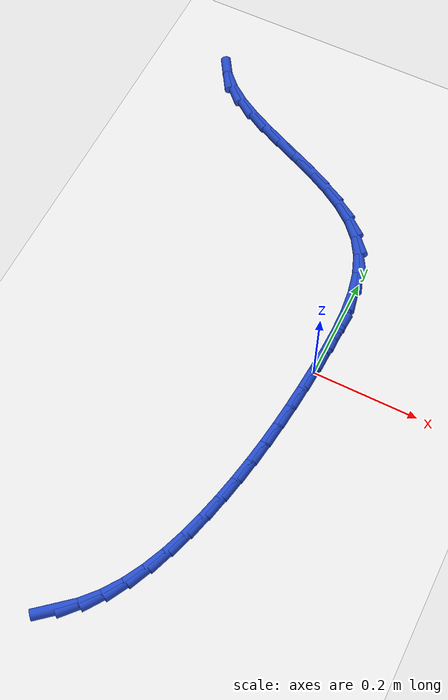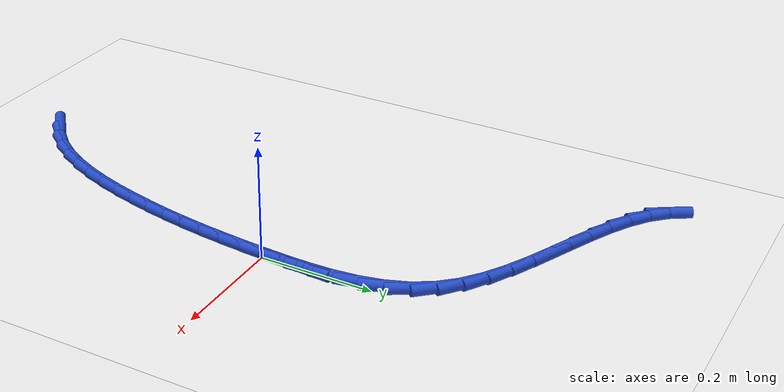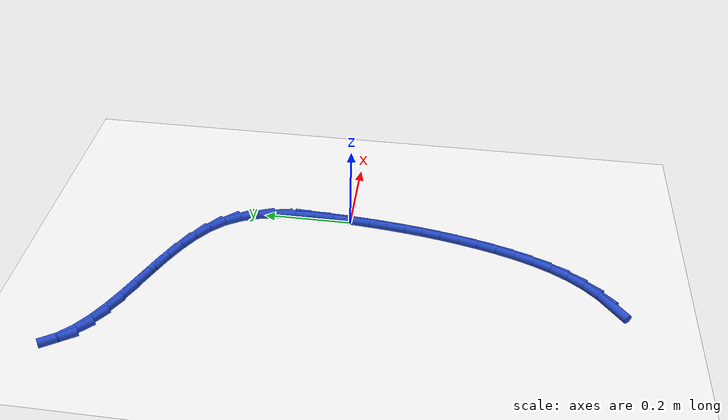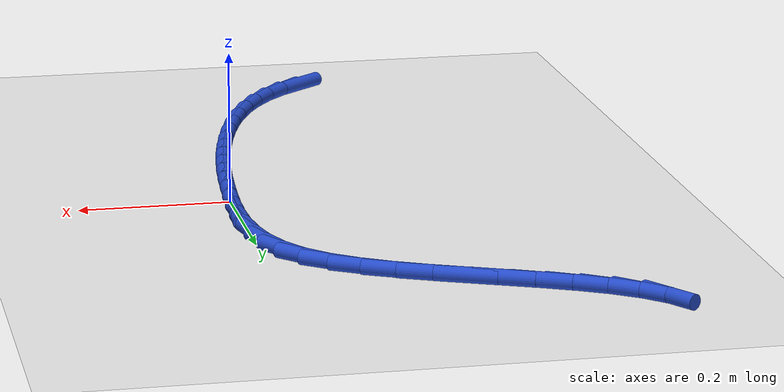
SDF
<sdf version="1.6">
 <world name="default">
  <model name="ground_plane">
   <static>1</static>
   <link name="link">
    <collision name="collision">
     <geometry><plane><normal>0 0 1</normal><size>100 100</size></plane></geometry>
     <surface><friction><ode><mu>100</mu><mu2>50</mu2></ode></friction></surface>
    </collision>
    <visual name="visual">
     <cast_shadows>0</cast_shadows>
     <geometry><plane><normal>0 0 1</normal><size>100 100</size></plane></geometry>
     <material>
      <script><uri>file://media/materials/scripts/gazebo.material</uri><name>Gazebo/WhiteGlow</name></script>
     </material>
    </visual>
   </link>
  </model>
  <model name="line">
   <link name="link_0">
    <pose>-1.734723475976807e-18 -6.938893903907228e-17 0.01 0 1.57 1.5075813447620587</pose>
    <collision name="collision">
     <geometry><cylinder><radius>0.01</radius><length>0.08</length></cylinder></geometry>
    </collision>
    <visual name="visual">
     <material>
      <script><name>Gazebo/Blue</name><uri>file://media/materials/scripts/gazebo.material</uri></script>
     </material>
     <geometry><cylinder><radius>0.01</radius><length>0.08</length></cylinder></geometry>
    </visual>
   </link>
   <link name="link_1">
    <pose>0.002784637520736706 0.04399158524193885 0.01 0 1.57 1.5406812396212106</pose>
    <collision name="collision">
     <geometry><cylinder><radius>0.01</radius><length>0.08</length></cylinder></geometry>
    </collision>
    <visual name="visual">
     <material>
      <script><name>Gazebo/Blue</name><uri>file://media/materials/scripts/gazebo.material</uri></script>
     </material>
     <geometry><cylinder><radius>0.01</radius><length>0.08</length></cylinder></geometry>
    </visual>
   </link>
   <link name="link_2">
    <pose>0.004123461948492164 0.08843507832212538 0.01 0 1.57 -1.5465252184194505</pose>
    <collision name="collision">
     <geometry><cylinder><radius>0.01</radius><length>0.08</length></cylinder></geometry>
    </collision>
    <visual name="visual">
     <material>
      <script><name>Gazebo/Blue</name><uri>file://media/materials/scripts/gazebo.material</uri></script>
     </material>
     <geometry><cylinder><radius>0.01</radius><length>0.08</length></cylinder></geometry>
    </visual>
   </link>
   <link name="link_3">
    <pose>0.003054482190493274 0.13246973162138626 0.01 0 1.57 -1.46737225537892</pose>
    <collision name="collision">
     <geometry><cylinder><radius>0.01</radius><length>0.08</length></cylinder></geometry>
    </collision>
    <visual name="visual">
     <material>
      <script><name>Gazebo/Blue</name><uri>file://media/materials/scripts/gazebo.material</uri></script>
     </material>
     <geometry><cylinder><radius>0.01</radius><length>0.08</length></cylinder></geometry>
    </visual>
   </link>
   <link name="link_4">
    <pose>-0.0013842928460330636 0.17523479752054835 0.01 0 1.57 -1.3582183337706233</pose>
    <collision name="collision">
     <geometry><cylinder><radius>0.01</radius><length>0.08</length></cylinder></geometry>
    </collision>
    <visual name="visual">
     <material>
      <script><name>Gazebo/Blue</name><uri>file://media/materials/scripts/gazebo.material</uri></script>
     </material>
     <geometry><cylinder><radius>0.01</radius><length>0.08</length></cylinder></geometry>
    </visual>
   </link>
   <link name="link_5">
    <pose>-0.010154854253859954 0.21586952840043838 0.01 0 1.57 -1.21323795592164</pose>
    <collision name="collision">
     <geometry><cylinder><radius>0.01</radius><length>0.08</length></cylinder></geometry>
    </collision>
    <visual name="visual">
     <material>
      <script><name>Gazebo/Blue</name><uri>file://media/materials/scripts/gazebo.material</uri></script>
     </material>
     <geometry><cylinder><radius>0.01</radius><length>0.08</length></cylinder></geometry>
    </visual>
   </link>
   <link name="link_6">
    <pose>-0.02421919312576048 0.25351317664188305 0.01 0 1.57 -1.0294588875116106</pose>
    <collision name="collision">
     <geometry><cylinder><radius>0.01</radius><length>0.08</length></cylinder></geometry>
    </collision>
    <visual name="visual">
     <material>
      <script><name>Gazebo/Blue</name><uri>file://media/materials/scripts/gazebo.material</uri></script>
     </material>
     <geometry><cylinder><radius>0.01</radius><length>0.08</length></cylinder></geometry>
    </visual>
   </link>
   <link name="link_7">
    <pose>-0.044537344429835014 0.28730641109138877 0.01 0 1.57 -0.8309019516130127</pose>
    <collision name="collision">
     <geometry><cylinder><radius>0.01</radius><length>0.08</length></cylinder></geometry>
    </collision>
    <visual name="visual">
     <material>
      <script><name>Gazebo/Blue</name><uri>file://media/materials/scripts/gazebo.material</uri></script>
     </material>
     <geometry><cylinder><radius>0.01</radius><length>0.08</length></cylinder></geometry>
    </visual>
   </link>
   <link name="link_8">
    <pose>-0.07147826844885385 0.3168179085938486 0.01 0 1.57 -0.6712388561655755</pose>
    <collision name="collision">
     <geometry><cylinder><radius>0.01</radius><length>0.08</length></cylinder></geometry>
    </collision>
    <visual name="visual">
     <material>
      <script><name>Gazebo/Blue</name><uri>file://media/materials/scripts/gazebo.material</uri></script>
     </material>
     <geometry><cylinder><radius>0.01</radius><length>0.08</length></cylinder></geometry>
    </visual>
   </link>
   <link name="link_9">
    <pose>-0.1039927515524356 0.3426432716822239 0.01 0 1.57 -0.5559903240304429</pose>
    <collision name="collision">
     <geometry><cylinder><radius>0.01</radius><length>0.08</length></cylinder></geometry>
    </collision>
    <visual name="visual">
     <material>
      <script><name>Gazebo/Blue</name><uri>file://media/materials/scripts/gazebo.material</uri></script>
     </material>
     <geometry><cylinder><radius>0.01</radius><length>0.08</length></cylinder></geometry>
    </visual>
   </link>
   <link name="link_10">
    <pose>-0.14082327517312274 0.365528940307124 0.01 0 1.57 -0.4785342879646732</pose>
    <collision name="collision">
     <geometry><cylinder><radius>0.01</radius><length>0.08</length></cylinder></geometry>
    </collision>
    <visual name="visual">
     <material>
      <script><name>Gazebo/Blue</name><uri>file://media/materials/scripts/gazebo.material</uri></script>
     </material>
     <geometry><cylinder><radius>0.01</radius><length>0.08</length></cylinder></geometry>
    </visual>
   </link>
   <link name="link_11">
    <pose>-0.18071232074345772 0.3862213544191577 0.01 0 1.57 -0.43248763090904774</pose>
    <collision name="collision">
     <geometry><cylinder><radius>0.01</radius><length>0.08</length></cylinder></geometry>
    </collision>
    <visual name="visual">
     <material>
      <script><name>Gazebo/Blue</name><uri>file://media/materials/scripts/gazebo.material</uri></script>
     </material>
     <geometry><cylinder><radius>0.01</radius><length>0.08</length></cylinder></geometry>
    </visual>
   </link>
   <link name="link_12">
    <pose>-0.22240236969598312 0.40546695396893434 0.01 0 1.57 -0.4137621364217773</pose>
    <collision name="collision">
     <geometry><cylinder><radius>0.01</radius><length>0.08</length></cylinder></geometry>
    </collision>
    <visual name="visual">
     <material>
      <script><name>Gazebo/Blue</name><uri>file://media/materials/scripts/gazebo.material</uri></script>
     </material>
     <geometry><cylinder><radius>0.01</radius><length>0.08</length></cylinder></geometry>
    </visual>
   </link>
   <link name="link_13">
    <pose>-0.2646359034632414 0.424012178907063 0.01 0 1.57 -0.4209999911419791</pose>
    <collision name="collision">
     <geometry><cylinder><radius>0.01</radius><length>0.08</length></cylinder></geometry>
    </collision>
    <visual name="visual">
     <material>
      <script><name>Gazebo/Blue</name><uri>file://media/materials/scripts/gazebo.material</uri></script>
     </material>
     <geometry><cylinder><radius>0.01</radius><length>0.08</length></cylinder></geometry>
    </visual>
   </link>
   <link name="link_14">
    <pose>-0.306155403477775 0.4426034691841526 0.01 0 1.57 -0.4557237394077343</pose>
    <collision name="collision">
     <geometry><cylinder><radius>0.01</radius><length>0.08</length></cylinder></geometry>
    </collision>
    <visual name="visual">
     <material>
      <script><name>Gazebo/Blue</name><uri>file://media/materials/scripts/gazebo.material</uri></script>
     </material>
     <geometry><cylinder><radius>0.01</radius><length>0.08</length></cylinder></geometry>
    </visual>
   </link>
   <link name="link_15">
    <pose>-0.34570335117212647 0.46198726475081253 0.01 0 1.57 -0.5226489040140722</pose>
    <collision name="collision">
     <geometry><cylinder><radius>0.01</radius><length>0.08</length></cylinder></geometry>
    </collision>
    <visual name="visual">
     <material>
      <script><name>Gazebo/Blue</name><uri>file://media/materials/scripts/gazebo.material</uri></script>
     </material>
     <geometry><cylinder><radius>0.01</radius><length>0.08</length></cylinder></geometry>
    </visual>
   </link>
   <link name="link_16">
    <pose>-0.38202222797883817 0.4829100055576516 0.01 0 1.57 -0.6299740824482429</pose>
    <collision name="collision">
     <geometry><cylinder><radius>0.01</radius><length>0.08</length></cylinder></geometry>
    </collision>
    <visual name="visual">
     <material>
      <script><name>Gazebo/Blue</name><uri>file://media/materials/scripts/gazebo.material</uri></script>
     </material>
     <geometry><cylinder><radius>0.01</radius><length>0.08</length></cylinder></geometry>
    </visual>
   </link>
   <link name="link_17">
    <pose>-0.4138545153304529 0.5061181315552792 0.01 0 1.57 -0.788298541894239</pose>
    <collision name="collision">
     <geometry><cylinder><radius>0.01</radius><length>0.08</length></cylinder></geometry>
    </collision>
    <visual name="visual">
     <material>
      <script><name>Gazebo/Blue</name><uri>file://media/materials/scripts/gazebo.material</uri></script>
     </material>
     <geometry><cylinder><radius>0.01</radius><length>0.08</length></cylinder></geometry>
    </visual>
   </link>
   <link name="link_18">
    <pose>-0.43994269465951275 0.5323580826943042 0.01 0 1.57 -1.0038657184812607</pose>
    <collision name="collision">
     <geometry><cylinder><radius>0.01</radius><length>0.08</length></cylinder></geometry>
    </collision>
    <visual name="visual">
     <material>
      <script><name>Gazebo/Blue</name><uri>file://media/materials/scripts/gazebo.material</uri></script>
     </material>
     <geometry><cylinder><radius>0.01</radius><length>0.08</length></cylinder></geometry>
    </visual>
   </link>
   <link name="link_205">
    <pose>-0.19896197428527543 -0.5757216868065077 0.01 0 1.57 0.6942159627749045</pose>
    <collision name="collision">
     <geometry><cylinder><radius>0.01</radius><length>0.08</length></cylinder></geometry>
    </collision>
    <visual name="visual">
     <material>
      <script><name>Gazebo/Blue</name><uri>file://media/materials/scripts/gazebo.material</uri></script>
     </material>
     <geometry><cylinder><radius>0.01</radius><length>0.08</length></cylinder></geometry>
    </visual>
   </link>
   <link name="link_206">
    <pose>-0.16854131709432416 -0.5503980506632516 0.01 0 1.57 0.8292312889650921</pose>
    <collision name="collision">
     <geometry><cylinder><radius>0.01</radius><length>0.08</length></cylinder></geometry>
    </collision>
    <visual name="visual">
     <material>
      <script><name>Gazebo/Blue</name><uri>file://media/materials/scripts/gazebo.material</uri></script>
     </material>
     <geometry><cylinder><radius>0.01</radius><length>0.08</length></cylinder></geometry>
    </visual>
   </link>
   <link name="link_207">
    <pose>-0.14162526264012698 -0.5210125409163601 0.01 0 1.57 0.9577525054974335</pose>
    <collision name="collision">
     <geometry><cylinder><radius>0.01</radius><length>0.08</length></cylinder></geometry>
    </collision>
    <visual name="visual">
     <material>
      <script><name>Gazebo/Blue</name><uri>file://media/materials/scripts/gazebo.material</uri></script>
     </material>
     <geometry><cylinder><radius>0.01</radius><length>0.08</length></cylinder></geometry>
    </visual>
   </link>
   <link name="link_208">
    <pose>-0.11822100438300491 -0.4877422995064346 0.01 0 1.57 1.0639790946997325</pose>
    <collision name="collision">
     <geometry><cylinder><radius>0.01</radius><length>0.08</length></cylinder></geometry>
    </collision>
    <visual name="visual">
     <material>
      <script><name>Gazebo/Blue</name><uri>file://media/materials/scripts/gazebo.material</uri></script>
     </material>
     <geometry><cylinder><radius>0.01</radius><length>0.08</length></cylinder></geometry>
    </visual>
   </link>
   <link name="link_209">
    <pose>-0.09799942387312803 -0.4513193262255612 0.01 0 1.57 1.1501027824840577</pose>
    <collision name="collision">
     <geometry><cylinder><radius>0.01</radius><length>0.08</length></cylinder></geometry>
    </collision>
    <visual name="visual">
     <material>
      <script><name>Gazebo/Blue</name><uri>file://media/materials/scripts/gazebo.material</uri></script>
     </material>
     <geometry><cylinder><radius>0.01</radius><length>0.08</length></cylinder></geometry>
    </visual>
   </link>
   <link name="link_210">
    <pose>-0.08062516981320962 -0.4124859040114564 0.01 0 1.57 1.2190969890287138</pose>
    <collision name="collision">
     <geometry><cylinder><radius>0.01</radius><length>0.08</length></cylinder></geometry>
    </collision>
    <visual name="visual">
     <material>
      <script><name>Gazebo/Blue</name><uri>file://media/materials/scripts/gazebo.material</uri></script>
     </material>
     <geometry><cylinder><radius>0.01</radius><length>0.08</length></cylinder></geometry>
    </visual>
   </link>
   <link name="link_211">
    <pose>-0.06576289090596288 -0.37198431580183605 0.01 0 1.57 1.2736487769379152</pose>
    <collision name="collision">
     <geometry><cylinder><radius>0.01</radius><length>0.08</length></cylinder></geometry>
    </collision>
    <visual name="visual">
     <material>
      <script><name>Gazebo/Blue</name><uri>file://media/materials/scripts/gazebo.material</uri></script>
     </material>
     <geometry><cylinder><radius>0.01</radius><length>0.08</length></cylinder></geometry>
    </visual>
   </link>
   <link name="link_212">
    <pose>-0.05307723585410082 -0.33055684453441564 0.01 0 1.57 1.3158542511454885</pose>
    <collision name="collision">
     <geometry><cylinder><radius>0.01</radius><length>0.08</length></cylinder></geometry>
    </collision>
    <visual name="visual">
     <material>
      <script><name>Gazebo/Blue</name><uri>file://media/materials/scripts/gazebo.material</uri></script>
     </material>
     <geometry><cylinder><radius>0.01</radius><length>0.08</length></cylinder></geometry>
    </visual>
   </link>
   <link name="link_213">
    <pose>-0.04223285336033725 -0.2889457731469134 0.01 0 1.57 1.3480578030308419</pose>
    <collision name="collision">
     <geometry><cylinder><radius>0.01</radius><length>0.08</length></cylinder></geometry>
    </collision>
    <visual name="visual">
     <material>
      <script><name>Gazebo/Blue</name><uri>file://media/materials/scripts/gazebo.material</uri></script>
     </material>
     <geometry><cylinder><radius>0.01</radius><length>0.08</length></cylinder></geometry>
    </visual>
   </link>
   <link name="link_214">
    <pose>-0.03291261530086931 -0.2477962117374202 0.01 0 1.57 1.3769879419287105</pose>
    <collision name="collision">
     <geometry><cylinder><radius>0.01</radius><length>0.08</length></cylinder></geometry>
    </collision>
    <visual name="visual">
     <material>
      <script><name>Gazebo/Blue</name><uri>file://media/materials/scripts/gazebo.material</uri></script>
     </material>
     <geometry><cylinder><radius>0.01</radius><length>0.08</length></cylinder></geometry>
    </visual>
   </link>
   <link name="link_215">
    <pose>-0.024923459882788542 -0.20709170189702872 0.01 0 1.57 1.4046684621458836</pose>
    <collision name="collision">
     <geometry><cylinder><radius>0.01</radius><length>0.08</length></cylinder></geometry>
    </collision>
    <visual name="visual">
     <material>
      <script><name>Gazebo/Blue</name><uri>file://media/materials/scripts/gazebo.material</uri></script>
     </material>
     <geometry><cylinder><radius>0.01</radius><length>0.08</length></cylinder></geometry>
    </visual>
   </link>
   <link name="link_216">
    <pose>-0.01812403439259697 -0.1665400528870556 0.01 0 1.57 1.4303987900744264</pose>
    <collision name="collision">
     <geometry><cylinder><radius>0.01</radius><length>0.08</length></cylinder></geometry>
    </collision>
    <visual name="visual">
     <material>
      <script><name>Gazebo/Blue</name><uri>file://media/materials/scripts/gazebo.material</uri></script>
     </material>
     <geometry><cylinder><radius>0.01</radius><length>0.08</length></cylinder></geometry>
    </visual>
   </link>
   <link name="link_217">
    <pose>-0.012373157244758676 -0.1258481614499349 0.01 0 1.57 1.4535617351863557</pose>
    <collision name="collision">
     <geometry><cylinder><radius>0.01</radius><length>0.08</length></cylinder></geometry>
    </collision>
    <visual name="visual">
     <material>
      <script><name>Gazebo/Blue</name><uri>file://media/materials/scripts/gazebo.material</uri></script>
     </material>
     <geometry><cylinder><radius>0.01</radius><length>0.08</length></cylinder></geometry>
    </visual>
   </link>
   <link name="link_218">
    <pose>-0.007529646853737255 -0.08472292432809761 0.01 0 1.57 1.4736796060665145</pose>
    <collision name="collision">
     <geometry><cylinder><radius>0.01</radius><length>0.08</length></cylinder></geometry>
    </collision>
    <visual name="visual">
     <material>
      <script><name>Gazebo/Blue</name><uri>file://media/materials/scripts/gazebo.material</uri></script>
     </material>
     <geometry><cylinder><radius>0.01</radius><length>0.08</length></cylinder></geometry>
    </visual>
   </link>
   <link name="link_219">
    <pose>-0.0034523216339964647 -0.04287123826397564 0.01 0 1.57 1.490442032358963</pose>
    <collision name="collision">
     <geometry><cylinder><radius>0.01</radius><length>0.08</length></cylinder></geometry>
    </collision>
    <visual name="visual">
     <material>
      <script><name>Gazebo/Blue</name><uri>file://media/materials/scripts/gazebo.material</uri></script>
     </material>
     <geometry><cylinder><radius>0.01</radius><length>0.08</length></cylinder></geometry>
    </visual>
   </link>
   <link name="link_220">
    <pose>2.1250362580715887e-17 1.734723475976807e-16 0.01 0 1.57 1.5037120343301127</pose>
    <collision name="collision">
     <geometry><cylinder><radius>0.01</radius><length>0.08</length></cylinder></geometry>
    </collision>
    <visual name="visual">
     <material>
      <script><name>Gazebo/Blue</name><uri>file://media/materials/scripts/gazebo.material</uri></script>
     </material>
     <geometry><cylinder><radius>0.01</radius><length>0.08</length></cylinder></geometry>
    </visual>
   </link>
   <link name="link_221">
    <pose>0.0029684996337881998 0.04418389372139463 0.01 0 1.57 1.513512938562197</pose>
    <collision name="collision">
     <geometry><cylinder><radius>0.01</radius><length>0.08</length></cylinder></geometry>
    </collision>
    <visual name="visual">
     <material>
      <script><name>Gazebo/Blue</name><uri>file://media/materials/scripts/gazebo.material</uri></script>
     </material>
     <geometry><cylinder><radius>0.01</radius><length>0.08</length></cylinder></geometry>
    </visual>
   </link>
   <link name="link_222">
    <pose>0.00559435885290461 0.08997354615778014 0.01 0 1.57 1.5086984507673977</pose>
    <collision name="collision">
     <geometry><cylinder><radius>0.01</radius><length>0.08</length></cylinder></geometry>
    </collision>
    <visual name="visual">
     <material>
      <script><name>Gazebo/Blue</name><uri>file://media/materials/scripts/gazebo.material</uri></script>
     </material>
     <geometry><cylinder><radius>0.01</radius><length>0.08</length></cylinder></geometry>
    </visual>
   </link>
  </model>
 </world>
</sdf>
